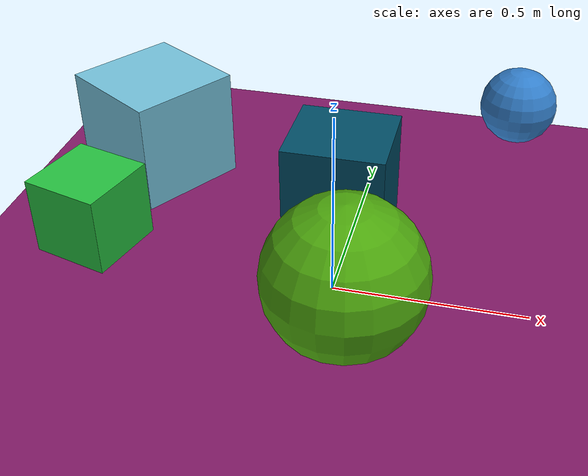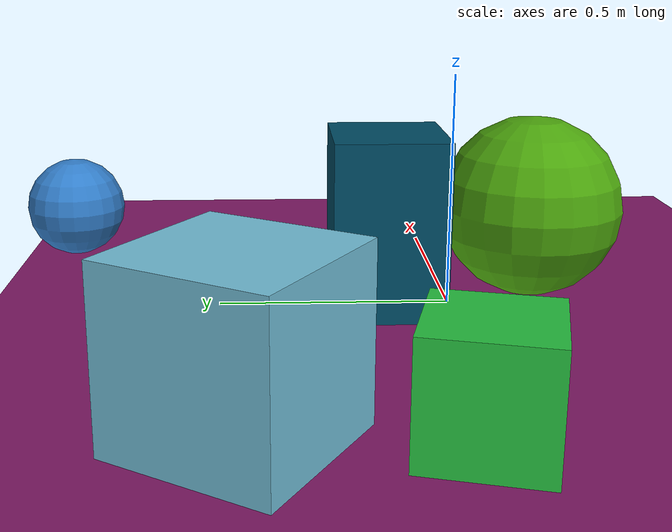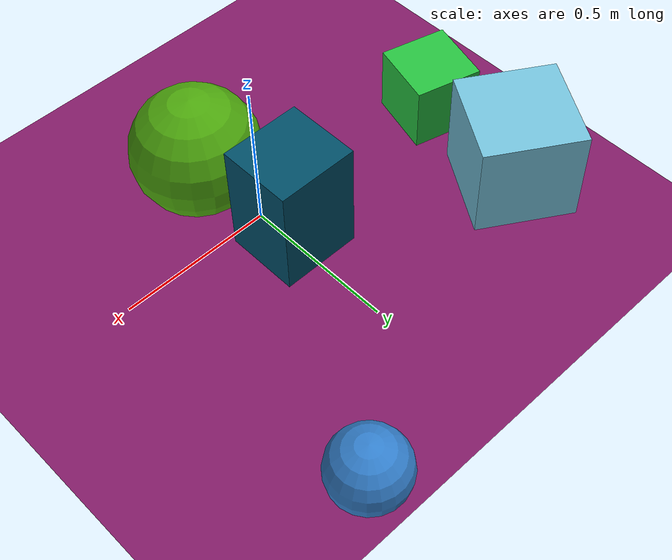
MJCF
<mujoco>
   <asset>
<texture type="skybox" builtin="gradient" rgb1="0.8 0.8 0.5" rgb2="0.3 0.9 0.4" width="500" height="500"/>
<texture name="checker_0" builtin="checker" rgb1="0.3 0.9 0.1" rgb2="0.0 0.6 0.4" width="500" height="500"/>
<texture name="gradient_1" builtin="gradient" rgb1="0.3 0.5 0.0" rgb2="0.3 0.8 0.1" width="500" height="500"/>
<texture name="gradient_2" builtin="gradient" rgb1="0.3 0.9 1.0" rgb2="0.6 0.6 0.7" width="500" height="500"/>
<texture name="flat_3" builtin="flat" rgb1="0.0 0.3 0.4" rgb2="0.0 0.3 0.4"  width="500" height="500"/>
<texture name="flat_4" builtin="flat" rgb1="0.2 0.5 0.8" rgb2="0.2 0.5 0.8"  width="500" height="500"/><material name="checker_0_mat" reflectance="0.7642848011263564" texrepeat="10 10" texture="checker_0" texuniform="false" />
<material name="gradient_1_mat" reflectance="0.905597119804878" texture="gradient_1" texuniform="true"/>
<material name="gradient_2_mat" reflectance="0.312997590593475" texture="gradient_2" texuniform="true"/>
<material name="flat_3_mat" reflectance="0.5099866822858821" texture="flat_3" texuniform="true"/>
<material name="flat_4_mat" reflectance="0.19115912291270487" texture="flat_4" texuniform="true"/>
   </asset>

   <worldbody>
     <geom type="plane" size="1 1 0.1" rgba="0.5 0.1 0.4 1" />
<light pos="-0.7426692174193268 0.24521167063121907 2" dir="0 0 -1" cutoff="90" diffuse="1 1 1" specular="1 1 1"/>
<light pos="-0.42670227428311236 0.36513531399210875 2" dir="0 0 -1" cutoff="90" diffuse="1 1 1" specular="1 1 1"/>
<geom type="box" pos="-0.68 0.05 0.11" size="0.11 0.11 0.11" material="checker_0_mat" euler="0 0 75" />
<geom type="sphere" pos="0.07 -0.19 0.2" size="0.2 0.2 0.2" material="gradient_1_mat" euler="0 0 30" />
<geom type="box" pos="-0.64 0.44 0.16" size="0.16 0.16 0.16" material="gradient_2_mat" euler="0 0 58" />
<geom type="box" pos="-0.01 0.14 0.19" size="0.13 0.12 0.19" material="flat_3_mat" euler="0 0 0" />
<geom type="sphere" pos="0.41 0.88 0.12" size="0.12 0.12 0.12" material="flat_4_mat" euler="0 0 61" /><camera euler="60 0 180" fovy="60" name="camera1" pos="-0.2 -1.5 1"></camera>   </worldbody>
   <visual>
      <headlight diffuse="0.7 0.7 0.7"/>
   </visual>
</mujoco>
